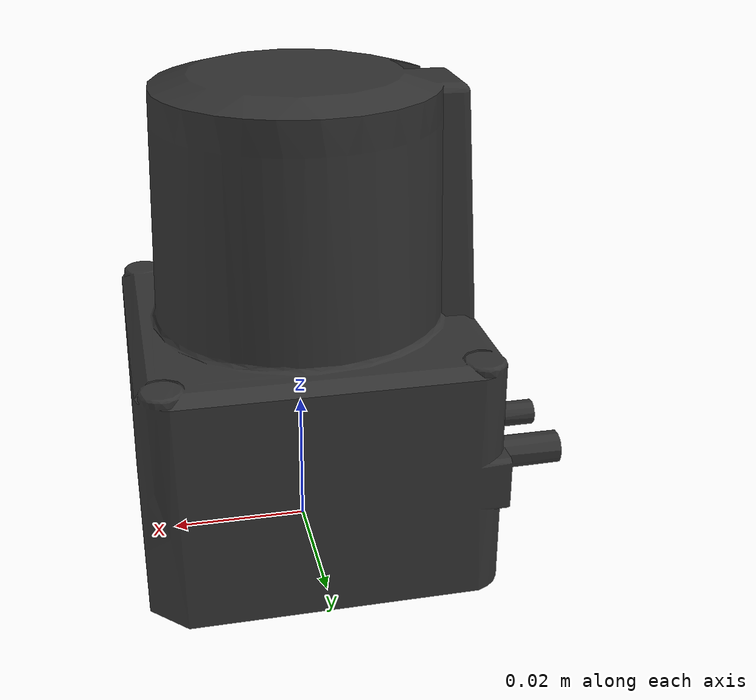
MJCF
<mujoco model="hokuyo_ust">
  <compiler angle="radian" meshdir="meshes" autolimits="true"/>

  <asset>
    <material name="hokuyo_ust_mat" rgba="0.2 0.2 0.2 1"/>
    <mesh name="hokuyo_ust" file="hokuyo_ust.obj"/>
  </asset>

  <worldbody>
    <body name="mount">
      <inertial pos="0 0 0.035" mass="0.13" diaginertia="0.000080167 0.000080167 0.000054167"/>
      <geom name="hokuyo_ust_visual" type="mesh" mesh="hokuyo_ust" material="hokuyo_ust_mat"
            contype="0" conaffinity="0"/>
      <!-- The vendor's own collision box (6 x 6 x 8 cm) over the bracket and sensor. -->
      <geom name="hokuyo_ust_collision" type="box" pos="0 0 0.04" size="0.03 0.03 0.04" group="3"/>
      <site name="scan" pos="0 0 0.0474" size="0.005"/>
    </body>
  </worldbody>
</mujoco>
